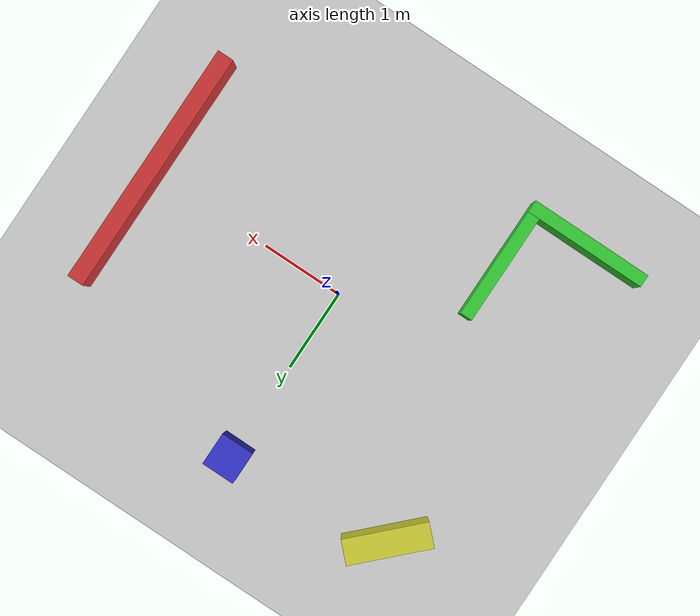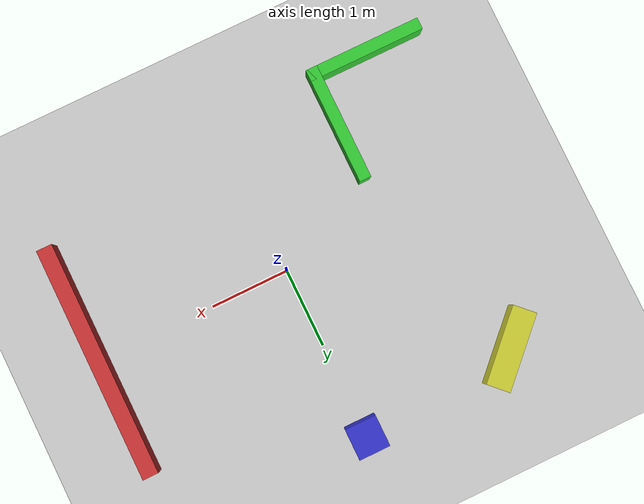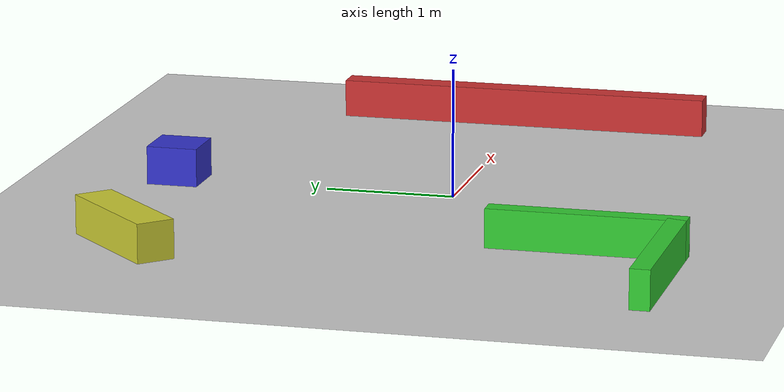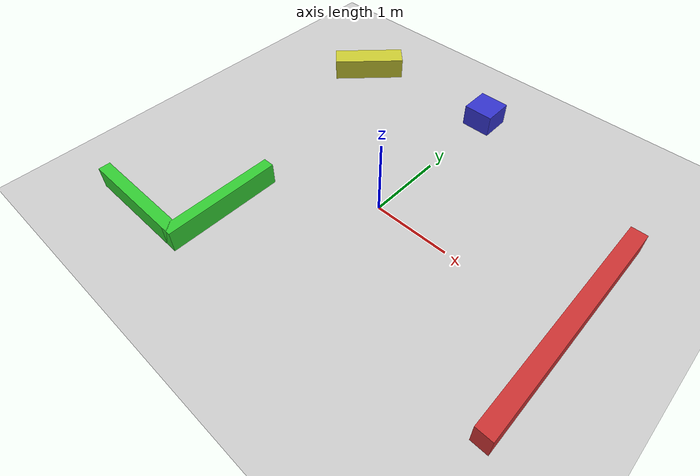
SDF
<?xml version="1.0" encoding="UTF-8"?>
<sdf version="1.7">
  <world name="lidar_test_world">

    <!-- Physique et mise à jour standard -->
    <physics type="ode">
      <max_step_size>0.001</max_step_size>
      <real_time_factor>1.0</real_time_factor>
    </physics>

    <!-- Éclairage global et Sol de base -->
    <include>
      <uri>model://sun</uri>
    </include>
    <include>
      <uri>model://ground_plane</uri>
    </include>

    <!-- OBSTACLES RECONNAISSABLES (Hors de la zone de 1.5m)       -->
    <!-- Faisceau LiDAR TB3 : situé à environ ~18cm du sol         -->

    <!-- OBSTACLE 1 : Une grande boîte rectangulaire (Mur plan) -->
    <!-- Positionné à X = 2.5m (Distance > 1.5m) -->
    <model name="mur_plan_nord">
      <static>true</static>
      <pose>2.5 0 0.15 0 0 0</pose> <!-- Hauteur 30cm, centre à 15cm -->
      <link name="link">
        <collision name="collision">
          <geometry>
            <box>
              <size>0.2 3.0 0.3</size> <!-- Épaisseur 20cm, Longueur 3m, Hauteur 30cm -->
            </box>
          </geometry>
        </collision>
        <visual name="visual">
          <geometry>
            <box>
              <size>0.2 3.0 0.3</size>
            </box>
          </geometry>
          <material>
            <ambient>0.8 0.2 0.2 1</ambient>
            <diffuse>0.8 0.2 0.2 1</diffuse>
          </material>
        </visual>
      </link>
    </model>

    <!-- OBSTACLE 2 : Un coin à angle droit (Forme en L) -->
    <!-- Positionné dans le quadrant Sud-Ouest à X = -2.0m, Y = -2.0m -->
    <model name="coin_angle_droit">
      <static>true</static>
      <pose>-2.0 -2.0 0.15 0 0 0</pose>
      <!-- Segment 1 du L -->
      <link name="segment_a">
        <pose>0 0 0 0 0 0</pose>
        <collision name="collision_a">
          <geometry>
            <box>
              <size>1.5 0.15 0.3</size>
            </box>
          </geometry>
        </collision>
        <visual name="visual_a">
          <geometry>
            <box>
              <size>1.5 0.15 0.3</size>
            </box>
          </geometry>
          <material>
            <ambient>0.2 0.8 0.2 1</ambient>
            <diffuse>0.2 0.8 0.2 1</diffuse>
          </material>
        </visual>
      </link>
      <!-- Segment 2 du L -->
      <link name="segment_b">
        <pose>0.675 0.675 0 0 0 1.5708</pose> <!-- Tourné à 90° -->
        <collision name="collision_b">
          <geometry>
            <box>
              <size>1.5 0.15 0.3</size>
            </box>
          </geometry>
        </collision>
        <visual name="visual_b">
          <geometry>
            <box>
              <size>1.5 0.15 0.3</size>
            </box>
          </geometry>
          <material>
            <ambient>0.2 0.8 0.2 1</ambient>
            <diffuse>0.2 0.8 0.2 1</diffuse>
          </material>
        </visual>
      </link>
    </model>

    <!-- OBSTACLE 3 : Une colonne carrée isolée -->
    <!-- Positionnée à X = 0m, Y = 2.2m (Zone centrale 1.5m respectée) -->
    <model name="poteau_carre">
      <static>true</static>
      <pose>0 2.2 0.15 0 0 0</pose>
      <link name="link">
        <collision name="collision">
          <geometry>
            <box>
              <size>0.4 0.4 0.3</size> <!-- Bloc carré de 40x40cm -->
            </box>
          </geometry>
        </collision>
        <visual name="visual">
          <geometry>
            <box>
              <size>0.4 0.4 0.3</size>
            </box>
          </geometry>
          <material>
            <ambient>0.2 0.2 0.8 1</ambient>
            <diffuse>0.2 0.2 0.8 1</diffuse>
          </material>
        </visual>
      </link>
    </model>

    <!-- OBSTACLE 4 : Un prisme triangulaire (Biseau) -->
    <!-- Positionné à X = -2.0m, Y = 2.0m (Tourné à 45° pour casser les axes) -->
    <model name="obstacle_biseau">
      <static>true</static>
      <pose>-2.0 2.0 0.15 0 0 0.7854</pose> <!-- Rotation 45° -->
      <link name="link">
        <collision name="collision">
          <geometry>
            <box>
              <size>1.0 0.3 0.3</size>
            </box>
          </geometry>
        </collision>
        <visual name="visual">
          <geometry>
            <box>
              <size>1.0 0.3 0.3</size>
            </box>
          </geometry>
          <material>
            <ambient>0.8 0.8 0.2 1</ambient>
            <diffuse>0.8 0.8 0.2 1</diffuse>
          </material>
        </visual>
      </link>
    </model>

  </world>
</sdf>
